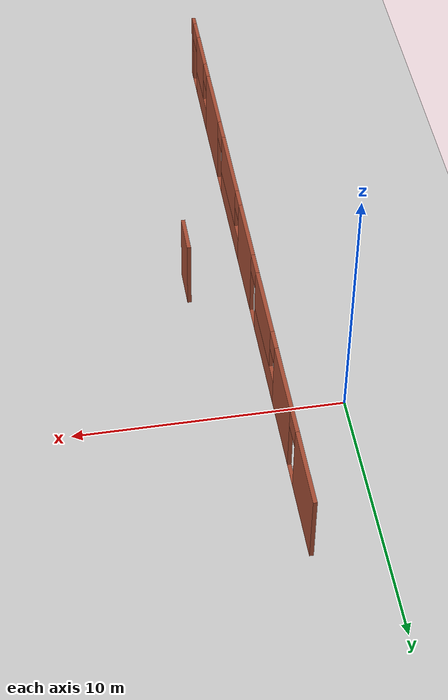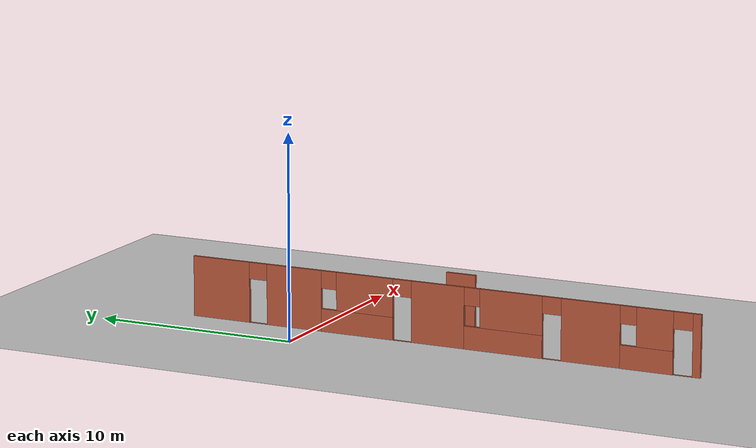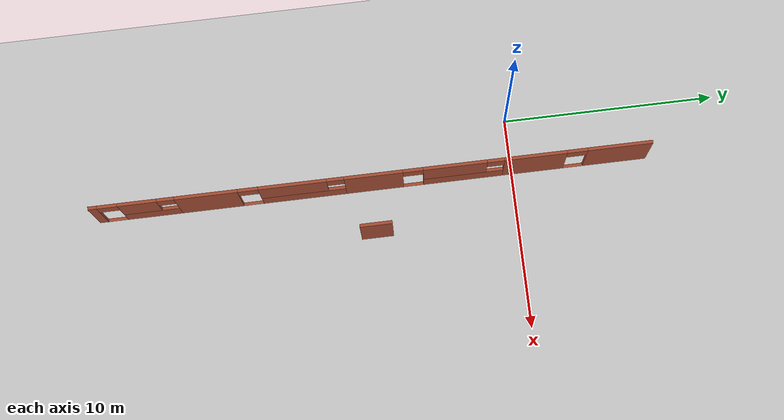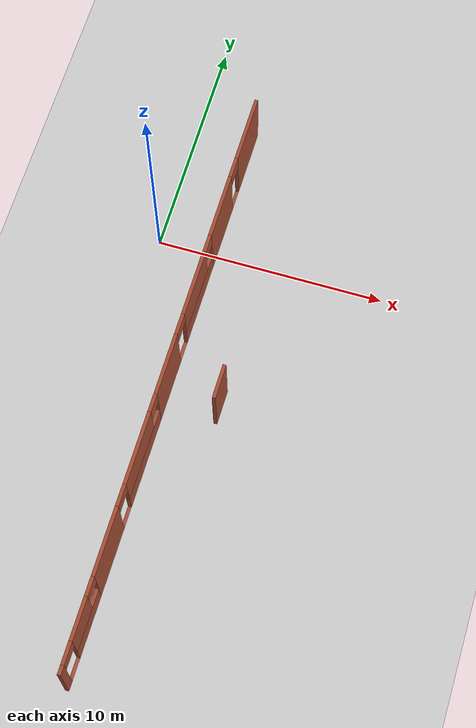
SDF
<sdf version="1.6">
 <world name="default">
  <model name="ground_plane">
   <static>1</static>
   <link name="link">
    <collision name="collision">
     <geometry><plane><normal>0 0 1</normal><size>100 100</size></plane></geometry>
     <surface><friction><ode><mu>100</mu><mu2>50</mu2></ode></friction></surface>
    </collision>
    <visual name="visual">
     <cast_shadows>0</cast_shadows>
     <geometry><plane><normal>0 0 1</normal><size>100 100</size></plane></geometry>
     <material>
      <script><uri>file://media/materials/scripts/gazebo.material</uri><name>Gazebo/Grey</name></script>
     </material>
    </visual>
   </link>
  </model>
  <model name="UNFRGS_INF_-_Predio_73">
   <pose>-0.02513 1.0401 -0.009 0 -0 0</pose>
   <link name="Wall_144">
    <pose>2.54387 -7.61722 0 0 0 -1.5708</pose>
    <visual name="Wall_144_Visual_0">
     <pose>-11.4903 0 1.48 0 -0 0</pose>
     <geometry><box><size>3.01932 0.15 2.96</size></box></geometry>
     <material>
      <script><uri>file://media/materials/scripts/gazebo.material</uri><name>Gazebo/Bricks</name></script>
      <ambient>0.929412 1 0.760784 1</ambient>
     </material>
     <meta><layer>0</layer></meta>
    </visual>
    <collision name="Wall_144_Collision_0">
     <geometry><box><size>3.01932 0.15 2.96</size></box></geometry>
     <pose>-11.4903 0 1.48 0 -0 0</pose>
    </collision>
    <visual name="Wall_144_Visual_1">
     <pose>-7.5871 0 1.48 0 -0 0</pose>
     <geometry><box><size>2.90715 0.15 2.96</size></box></geometry>
     <material>
      <script><uri>file://media/materials/scripts/gazebo.material</uri><name>Gazebo/Bricks</name></script>
      <ambient>0.929412 1 0.760784 1</ambient>
     </material>
     <meta><layer>0</layer></meta>
    </visual>
    <collision name="Wall_144_Collision_1">
     <geometry><box><size>2.90715 0.15 2.96</size></box></geometry>
     <pose>-7.5871 0 1.48 0 -0 0</pose>
    </collision>
    <visual name="Wall_144_Visual_2">
     <pose>-0.077358 0 1.48 0 -0 0</pose>
     <geometry><box><size>2.71582 0.15 2.96</size></box></geometry>
     <material>
      <script><uri>file://media/materials/scripts/gazebo.material</uri><name>Gazebo/Bricks</name></script>
      <ambient>0.929412 1 0.760784 1</ambient>
     </material>
     <meta><layer>0</layer></meta>
    </visual>
    <collision name="Wall_144_Collision_2">
     <geometry><box><size>2.71582 0.15 2.96</size></box></geometry>
     <pose>-0.077358 0 1.48 0 -0 0</pose>
    </collision>
    <visual name="Wall_144_Visual_3">
     <pose>7.62372 0 1.48 0 -0 0</pose>
     <geometry><box><size>2.90715 0.15 2.96</size></box></geometry>
     <material>
      <script><uri>file://media/materials/scripts/gazebo.material</uri><name>Gazebo/Bricks</name></script>
      <ambient>0.929412 1 0.760784 1</ambient>
     </material>
     <meta><layer>0</layer></meta>
    </visual>
    <collision name="Wall_144_Collision_3">
     <geometry><box><size>2.90715 0.15 2.96</size></box></geometry>
     <pose>7.62372 0 1.48 0 -0 0</pose>
    </collision>
    <visual name="Wall_144_Visual_4">
     <pose>12.8018 0 1.48 0 -0 0</pose>
     <geometry><box><size>0.396346 0.15 2.96</size></box></geometry>
     <material>
      <script><uri>file://media/materials/scripts/gazebo.material</uri><name>Gazebo/Bricks</name></script>
      <ambient>0.929412 1 0.760784 1</ambient>
     </material>
     <meta><layer>0</layer></meta>
    </visual>
    <collision name="Wall_144_Collision_4">
     <geometry><box><size>0.396346 0.15 2.96</size></box></geometry>
     <pose>12.8018 0 1.48 0 -0 0</pose>
    </collision>
    <visual name="Wall_144_Visual_5">
     <pose>-9.51068 0 0 0 -0 0</pose>
     <geometry><box><size>0.94 0.15 0.001</size></box></geometry>
     <material>
      <script><uri>file://media/materials/scripts/gazebo.material</uri><name>Gazebo/Bricks</name></script>
      <ambient>0.929412 1 0.760784 1</ambient>
     </material>
     <meta><layer>0</layer></meta>
    </visual>
    <collision name="Wall_144_Collision_5">
     <geometry><box><size>0.94 0.15 0.001</size></box></geometry>
     <pose>-9.51068 0 0 0 -0 0</pose>
    </collision>
    <visual name="Wall_144_Visual_6">
     <pose>-4.2544 0 0.55 0 -0 0</pose>
     <geometry><box><size>3.75826 0.15 1.11</size></box></geometry>
     <material>
      <script><uri>file://media/materials/scripts/gazebo.material</uri><name>Gazebo/Bricks</name></script>
      <ambient>0.929412 1 0.760784 1</ambient>
     </material>
     <meta><layer>0</layer></meta>
    </visual>
    <collision name="Wall_144_Collision_6">
     <geometry><box><size>3.75826 0.15 1.11</size></box></geometry>
     <pose>-4.2544 0 0.55 0 -0 0</pose>
    </collision>
    <visual name="Wall_144_Visual_7">
     <pose>3.25535 0 0.55 0 -0 0</pose>
     <geometry><box><size>3.94959 0.15 1.11</size></box></geometry>
     <material>
      <script><uri>file://media/materials/scripts/gazebo.material</uri><name>Gazebo/Bricks</name></script>
      <ambient>0.929412 1 0.760784 1</ambient>
     </material>
     <meta><layer>0</layer></meta>
    </visual>
    <collision name="Wall_144_Collision_7">
     <geometry><box><size>3.94959 0.15 1.11</size></box></geometry>
     <pose>3.25535 0 0.55 0 -0 0</pose>
    </collision>
    <visual name="Wall_144_Visual_8">
     <pose>10.3705 0 0.55 0 -0 0</pose>
     <geometry><box><size>2.58636 0.15 1.11</size></box></geometry>
     <material>
      <script><uri>file://media/materials/scripts/gazebo.material</uri><name>Gazebo/Bricks</name></script>
      <ambient>0.929412 1 0.760784 1</ambient>
     </material>
     <meta><layer>0</layer></meta>
    </visual>
    <collision name="Wall_144_Collision_8">
     <geometry><box><size>2.58636 0.15 1.11</size></box></geometry>
     <pose>10.3705 0 0.55 0 -0 0</pose>
    </collision>
    <visual name="Wall_144_Visual_9">
     <pose>-1.90527 0 0 0 -0 0</pose>
     <geometry><box><size>0.94 0.15 0.001</size></box></geometry>
     <material>
      <script><uri>file://media/materials/scripts/gazebo.material</uri><name>Gazebo/Bricks</name></script>
      <ambient>0.929412 1 0.760784 1</ambient>
     </material>
     <meta><layer>0</layer></meta>
    </visual>
    <collision name="Wall_144_Collision_9">
     <geometry><box><size>0.94 0.15 0.001</size></box></geometry>
     <pose>-1.90527 0 0 0 -0 0</pose>
    </collision>
    <visual name="Wall_144_Visual_10">
     <pose>5.70015 0 0 0 -0 0</pose>
     <geometry><box><size>0.94 0.15 0.001</size></box></geometry>
     <material>
      <script><uri>file://media/materials/scripts/gazebo.material</uri><name>Gazebo/Bricks</name></script>
      <ambient>0.929412 1 0.760784 1</ambient>
     </material>
     <meta><layer>0</layer></meta>
    </visual>
    <collision name="Wall_144_Collision_10">
     <geometry><box><size>0.94 0.15 0.001</size></box></geometry>
     <pose>5.70015 0 0 0 -0 0</pose>
    </collision>
    <visual name="Wall_144_Visual_11">
     <pose>12.1337 0 0 0 -0 0</pose>
     <geometry><box><size>0.94 0.15 0.001</size></box></geometry>
     <material>
      <script><uri>file://media/materials/scripts/gazebo.material</uri><name>Gazebo/Bricks</name></script>
      <ambient>0.929412 1 0.760784 1</ambient>
     </material>
     <meta><layer>0</layer></meta>
    </visual>
    <collision name="Wall_144_Collision_11">
     <geometry><box><size>0.94 0.15 0.001</size></box></geometry>
     <pose>12.1337 0 0 0 -0 0</pose>
    </collision>
    <visual name="Wall_144_Visual_12">
     <pose>-3.8544 0 2.03 0 -0 0</pose>
     <geometry><box><size>2.95826 0.15 1.86</size></box></geometry>
     <material>
      <script><uri>file://media/materials/scripts/gazebo.material</uri><name>Gazebo/Bricks</name></script>
      <ambient>0.929412 1 0.760784 1</ambient>
     </material>
     <meta><layer>0</layer></meta>
    </visual>
    <collision name="Wall_144_Collision_12">
     <geometry><box><size>2.95826 0.15 1.86</size></box></geometry>
     <pose>-3.8544 0 2.03 0 -0 0</pose>
    </collision>
    <visual name="Wall_144_Visual_13">
     <pose>-3.8544 0 2.03 0 -0 0</pose>
     <geometry><box><size>2.95826 0.15 1.86</size></box></geometry>
     <material>
      <script><uri>file://media/materials/scripts/gazebo.material</uri><name>Gazebo/Bricks</name></script>
      <ambient>0.929412 1 0.760784 1</ambient>
     </material>
     <meta><layer>0</layer></meta>
    </visual>
    <collision name="Wall_144_Collision_13">
     <geometry><box><size>2.95826 0.15 1.86</size></box></geometry>
     <pose>-3.8544 0 2.03 0 -0 0</pose>
    </collision>
    <visual name="Wall_144_Visual_14">
     <pose>3.65535 0 2.03 0 -0 0</pose>
     <geometry><box><size>3.14959 0.15 1.86</size></box></geometry>
     <material>
      <script><uri>file://media/materials/scripts/gazebo.material</uri><name>Gazebo/Bricks</name></script>
      <ambient>0.929412 1 0.760784 1</ambient>
     </material>
     <meta><layer>0</layer></meta>
    </visual>
    <collision name="Wall_144_Collision_14">
     <geometry><box><size>3.14959 0.15 1.86</size></box></geometry>
     <pose>3.65535 0 2.03 0 -0 0</pose>
    </collision>
    <visual name="Wall_144_Visual_15">
     <pose>3.65535 0 2.03 0 -0 0</pose>
     <geometry><box><size>3.14959 0.15 1.86</size></box></geometry>
     <material>
      <script><uri>file://media/materials/scripts/gazebo.material</uri><name>Gazebo/Bricks</name></script>
      <ambient>0.929412 1 0.760784 1</ambient>
     </material>
     <meta><layer>0</layer></meta>
    </visual>
    <collision name="Wall_144_Collision_15">
     <geometry><box><size>3.14959 0.15 1.86</size></box></geometry>
     <pose>3.65535 0 2.03 0 -0 0</pose>
    </collision>
    <visual name="Wall_144_Visual_16">
     <pose>10.7705 0 2.03 0 -0 0</pose>
     <geometry><box><size>1.78636 0.15 1.86</size></box></geometry>
     <material>
      <script><uri>file://media/materials/scripts/gazebo.material</uri><name>Gazebo/Bricks</name></script>
      <ambient>0.929412 1 0.760784 1</ambient>
     </material>
     <meta><layer>0</layer></meta>
    </visual>
    <collision name="Wall_144_Collision_16">
     <geometry><box><size>1.78636 0.15 1.86</size></box></geometry>
     <pose>10.7705 0 2.03 0 -0 0</pose>
    </collision>
    <visual name="Wall_144_Visual_17">
     <pose>-5.73353 0 2.53 0 -0 0</pose>
     <geometry><box><size>0.8 0.15 0.86</size></box></geometry>
     <material>
      <script><uri>file://media/materials/scripts/gazebo.material</uri><name>Gazebo/Bricks</name></script>
      <ambient>0.929412 1 0.760784 1</ambient>
     </material>
     <meta><layer>0</layer></meta>
    </visual>
    <collision name="Wall_144_Collision_17">
     <geometry><box><size>0.8 0.15 0.86</size></box></geometry>
     <pose>-5.73353 0 2.53 0 -0 0</pose>
    </collision>
    <visual name="Wall_144_Visual_18">
     <pose>1.68055 0 2.53 0 -0 0</pose>
     <geometry><box><size>0.8 0.15 0.86</size></box></geometry>
     <material>
      <script><uri>file://media/materials/scripts/gazebo.material</uri><name>Gazebo/Bricks</name></script>
      <ambient>0.929412 1 0.760784 1</ambient>
     </material>
     <meta><layer>0</layer></meta>
    </visual>
    <collision name="Wall_144_Collision_18">
     <geometry><box><size>0.8 0.15 0.86</size></box></geometry>
     <pose>1.68055 0 2.53 0 -0 0</pose>
    </collision>
    <visual name="Wall_144_Visual_19">
     <pose>9.47729 0 2.53 0 -0 0</pose>
     <geometry><box><size>0.8 0.15 0.86</size></box></geometry>
     <material>
      <script><uri>file://media/materials/scripts/gazebo.material</uri><name>Gazebo/Bricks</name></script>
      <ambient>0.929412 1 0.760784 1</ambient>
     </material>
     <meta><layer>0</layer></meta>
    </visual>
    <collision name="Wall_144_Collision_19">
     <geometry><box><size>0.8 0.15 0.86</size></box></geometry>
     <pose>9.47729 0 2.53 0 -0 0</pose>
    </collision>
    <visual name="Wall_144_Visual_20">
     <pose>-9.51068 0 2.555 0 -0 0</pose>
     <geometry><box><size>0.94 0.15 0.81</size></box></geometry>
     <material>
      <script><uri>file://media/materials/scripts/gazebo.material</uri><name>Gazebo/Bricks</name></script>
      <ambient>0.929412 1 0.760784 1</ambient>
     </material>
     <meta><layer>0</layer></meta>
    </visual>
    <collision name="Wall_144_Collision_20">
     <geometry><box><size>0.94 0.15 0.81</size></box></geometry>
     <pose>-9.51068 0 2.555 0 -0 0</pose>
    </collision>
    <visual name="Wall_144_Visual_21">
     <pose>-1.90527 0 2.555 0 -0 0</pose>
     <geometry><box><size>0.94 0.15 0.81</size></box></geometry>
     <material>
      <script><uri>file://media/materials/scripts/gazebo.material</uri><name>Gazebo/Bricks</name></script>
      <ambient>0.929412 1 0.760784 1</ambient>
     </material>
     <meta><layer>0</layer></meta>
    </visual>
    <collision name="Wall_144_Collision_21">
     <geometry><box><size>0.94 0.15 0.81</size></box></geometry>
     <pose>-1.90527 0 2.555 0 -0 0</pose>
    </collision>
    <visual name="Wall_144_Visual_22">
     <pose>-1.90527 0 2.555 0 -0 0</pose>
     <geometry><box><size>0.94 0.15 0.81</size></box></geometry>
     <material>
      <script><uri>file://media/materials/scripts/gazebo.material</uri><name>Gazebo/Bricks</name></script>
      <ambient>0.929412 1 0.760784 1</ambient>
     </material>
     <meta><layer>0</layer></meta>
    </visual>
    <collision name="Wall_144_Collision_22">
     <geometry><box><size>0.94 0.15 0.81</size></box></geometry>
     <pose>-1.90527 0 2.555 0 -0 0</pose>
    </collision>
    <visual name="Wall_144_Visual_23">
     <pose>5.70015 0 2.555 0 -0 0</pose>
     <geometry><box><size>0.94 0.15 0.81</size></box></geometry>
     <material>
      <script><uri>file://media/materials/scripts/gazebo.material</uri><name>Gazebo/Bricks</name></script>
      <ambient>0.929412 1 0.760784 1</ambient>
     </material>
     <meta><layer>0</layer></meta>
    </visual>
    <collision name="Wall_144_Collision_23">
     <geometry><box><size>0.94 0.15 0.81</size></box></geometry>
     <pose>5.70015 0 2.555 0 -0 0</pose>
    </collision>
    <visual name="Wall_144_Visual_24">
     <pose>5.70015 0 2.555 0 -0 0</pose>
     <geometry><box><size>0.94 0.15 0.81</size></box></geometry>
     <material>
      <script><uri>file://media/materials/scripts/gazebo.material</uri><name>Gazebo/Bricks</name></script>
      <ambient>0.929412 1 0.760784 1</ambient>
     </material>
     <meta><layer>0</layer></meta>
    </visual>
    <collision name="Wall_144_Collision_24">
     <geometry><box><size>0.94 0.15 0.81</size></box></geometry>
     <pose>5.70015 0 2.555 0 -0 0</pose>
    </collision>
    <visual name="Wall_144_Visual_25">
     <pose>12.1337 0 2.555 0 -0 0</pose>
     <geometry><box><size>0.94 0.15 0.81</size></box></geometry>
     <material>
      <script><uri>file://media/materials/scripts/gazebo.material</uri><name>Gazebo/Bricks</name></script>
      <ambient>0.929412 1 0.760784 1</ambient>
     </material>
     <meta><layer>0</layer></meta>
    </visual>
    <collision name="Wall_144_Collision_25">
     <geometry><box><size>0.94 0.15 0.81</size></box></geometry>
     <pose>12.1337 0 2.555 0 -0 0</pose>
    </collision>
   </link>
   <link name="Wall_207">
    <collision name="Wall_207_Collision">
     <geometry><box><size>1.5 0.15 2.96</size></box></geometry>
     <pose>0 0 1.48 0 -0 0</pose>
    </collision>
    <visual name="Wall_207_Visual">
     <pose>0 0 1.48 0 -0 0</pose>
     <geometry><box><size>1.5 0.15 2.96</size></box></geometry>
     <material>
      <script><uri>file://media/materials/scripts/gazebo.material</uri><name>Gazebo/Bricks</name></script>
      <ambient>0.929412 1 0.760784 1</ambient>
     </material>
     <meta><layer>0</layer></meta>
    </visual>
    <pose>4.83287 -7.67422 0 0 0 -1.5708</pose>
   </link>
   <static>1</static>
  </model>
 </world>
</sdf>
